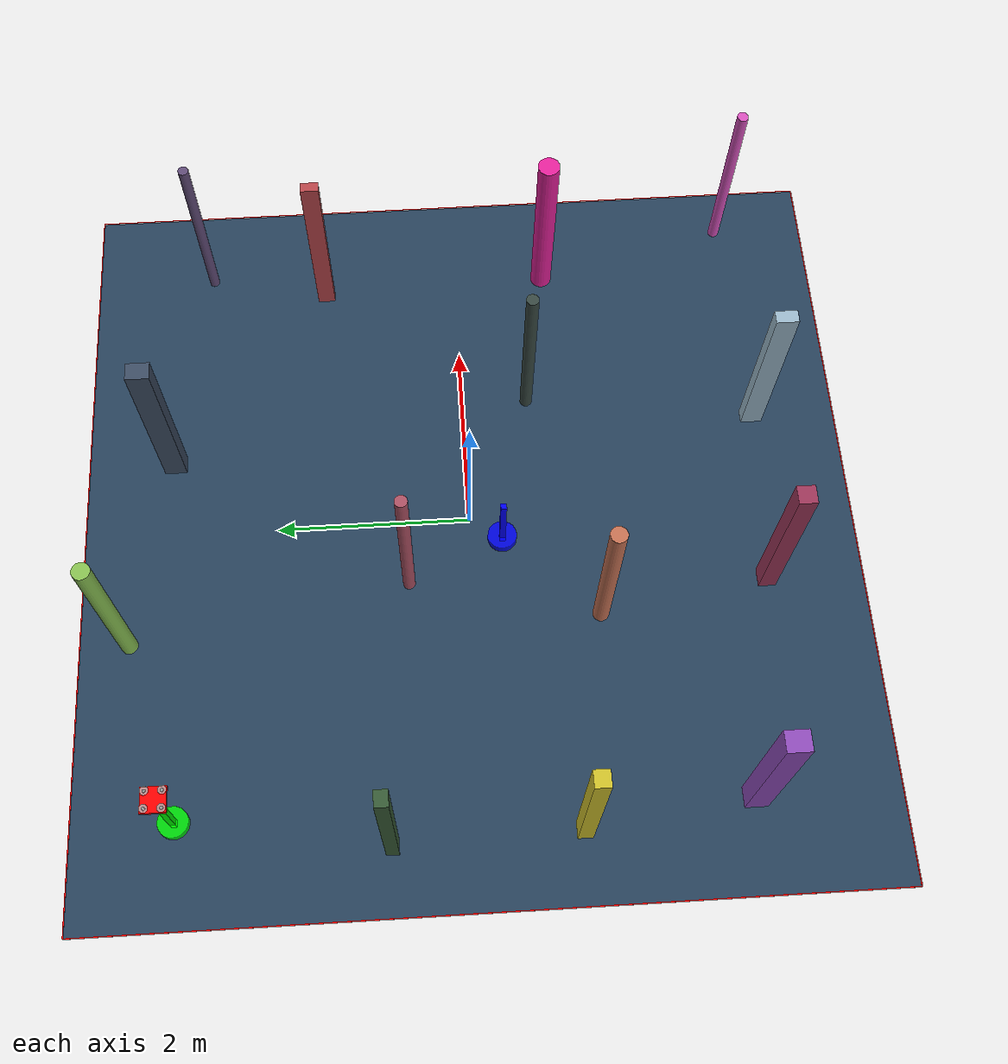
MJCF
<?xml version='1.0' encoding='utf-8'?>
<mujoco model="complex_uav_env">
  <compiler angle="degree" coordinate="local" inertiafromgeom="true" />
  <option integrator="RK4" timestep="0.01" />

  <visual>
    <headlight diffuse="0.6 0.6 0.6" ambient="0.3 0.3 0.3" />
    <rgba haze="0.15 0.25 0.35 1" />
    <global offwidth="2560" offheight="1440" />
  </visual>

  <asset>
    <texture type="skybox" builtin="gradient" rgb1="0.3 0.5 0.7" rgb2="0 0 0" width="512" height="3072" />
    <texture name="grid" type="2d" builtin="checker" rgb1="0.1 0.2 0.3" rgb2="0.2 0.3 0.4" width="512" height="512" />
    <material name="grid" texture="grid" texrepeat="1 1" />
  </asset>

  <worldbody>

    <geom name="ground" type="plane" size="4.0 4.0 0.1" material="grid" />
    <light name="light1" pos="0 0 4" dir="0 0 -1" diffuse="1 1 1" />

    <geom name="start_marker" type="cylinder" size="0.15 0.05" pos="-3.0 3.0 0.05" rgba="0 1 0 0.8" />
    <geom name="start_pole" type="box" size="0.03 0.03 0.4" pos="-3.0 3.0 0.4" rgba="0 1 0 1" />

    <geom name="goal_marker" type="cylinder" size="0.15 0.05" pos="-0.2242432156104357 -0.3198791996661612 0.05" rgba="0 0 1 0.8" />
    <geom name="goal_pole" type="box" size="0.03 0.03 0.4" pos="-0.2242432156104357 -0.3198791996661612 0.4" rgba="0 0 1 1" />

    <body name="chassis" pos="-3.0 3.0 1.0">
      <joint type="free" name="root" />
      <geom type="box" size="0.12 0.12 0.02" rgba="1.0 0.0 0.0 1.0" mass="0.8" />

      <geom type="box" size="0.08 0.01 0.005" pos="0 0 0.01" rgba="0.3 0.3 0.3 1" />
      <geom type="box" size="0.01 0.08 0.005" pos="0 0 0.01" rgba="0.3 0.3 0.3 1" />

      <geom type="cylinder" size="0.015 0.02" pos="0.08 0.08 0.015" rgba="0.2 0.2 0.2 1" />
      <geom type="cylinder" size="0.015 0.02" pos="-0.08 0.08 0.015" rgba="0.2 0.2 0.2 1" />
      <geom type="cylinder" size="0.015 0.02" pos="0.08 -0.08 0.015" rgba="0.2 0.2 0.2 1" />
      <geom type="cylinder" size="0.015 0.02" pos="-0.08 -0.08 0.015" rgba="0.2 0.2 0.2 1" />

      <geom type="cylinder" size="0.04 0.002" pos="0.08 0.08 0.035" rgba="0.7 0.7 0.7 0.8" />
      <geom type="cylinder" size="0.04 0.002" pos="-0.08 0.08 0.035" rgba="0.7 0.7 0.7 0.8" />
      <geom type="cylinder" size="0.04 0.002" pos="0.08 -0.08 0.035" rgba="0.7 0.7 0.7 0.8" />
      <geom type="cylinder" size="0.04 0.002" pos="-0.08 -0.08 0.035" rgba="0.7 0.7 0.7 0.8" />

      <site name="motor1" pos="0.08 0.08 0" size="0.01" />
      <site name="motor2" pos="-0.08 0.08 0" size="0.01" />
      <site name="motor3" pos="0.08 -0.08 0" size="0.01" />
      <site name="motor4" pos="-0.08 -0.08 0" size="0.01" />
    </body>
    <geom name="test_obs_0" type="box" size="0.0757116288975305 0.06349425384128946 1.0" pos="-3.3400115976396085 0.9319652478945712 1.0" rgba="0.21343495241598198 0.3501647741068886 0.205820254365348 1.0" />
    <geom name="test_obs_1" type="box" size="0.0653081086678565 0.11086333892384156 1.0" pos="1.0560759450921196 -3.0987988962202437 1.0" rgba="0.6024636121229404 0.7142544928659288 0.7844827196974484 1.0" />
    <geom name="test_obs_2" type="box" size="0.09865907929619491 0.11462439136318506 1.0" pos="-3.0668754951443256 -2.558372436854278 1.0" rgba="0.5519477526980986 0.2932225342218395 0.720818724333204 1.0" />
    <geom name="test_obs_3" type="cylinder" size="0.06221605528914517 1.0" pos="-0.6710129081920782 0.6642823304775587 1.0" rgba="0.6665849244584168 0.3137624197428118 0.38329012458550316 1.0" />
    <geom name="test_obs_4" type="box" size="0.0875429469306662 0.11447197404140086 1.0" pos="0.8221309156095918 3.0827096660600937 1.0" rgba="0.23336120138415373 0.2959945611643783 0.3827195871316288 1.0" />
    <geom name="test_obs_5" type="box" size="0.05198029327737542 0.09103750738142893 1.0" pos="2.8500579009937126 1.4473147940001416 1.0" rgba="0.7137692886849186 0.2701615685179249 0.2886681422735181 1.0" />
    <geom name="test_obs_6" type="cylinder" size="0.05823296463047046 1.0" pos="3.4731062011128664 -3.015288030828605 1.0" rgba="0.8402149562493672 0.31940637358274204 0.7370543896716492 1.0" />
    <geom name="test_obs_7" type="cylinder" size="0.08568443661320753 1.0" pos="-1.1806231145480752 3.497868553711653 1.0" rgba="0.5301092048429588 0.7455943674677432 0.3188719717733757 1.0" />
    <geom name="test_obs_8" type="box" size="0.08946579480181108 0.0887675338275064 1.0" pos="-0.8208569178848641 -2.9926074279078154 1.0" rgba="0.6024072223501432 0.20604899782392147 0.3435305981585597 1.0" />
    <geom name="test_obs_9" type="cylinder" size="0.08287872216414632 1.0" pos="-1.1131476356305507 -1.2628145255736853 1.0" rgba="0.7652043405739205 0.4391649361021457 0.3231172243408394 1.0" />
    <geom name="test_obs_10" type="box" size="0.0797577649873882 0.07556242035360015 1.0" pos="-3.2840481789160165 -0.8975290995256515 1.0" rgba="0.8034385417745581 0.746349865961603 0.16293193783753263 1.0" />
    <geom name="test_obs_11" type="cylinder" size="0.06386242750678879 1.0" pos="1.3890037176208767 -0.6878118856602337 1.0" rgba="0.21450236981164406 0.27876756004984615 0.2545327192840914 1.0" />
    <geom name="test_obs_12" type="cylinder" size="0.11138823529195507 1.0" pos="2.9604679028393956 -0.9759164268356137 1.0" rgba="0.8898994502412118 0.12987883625864632 0.6041430882865632 1.0" />
    <geom name="test_obs_13" type="cylinder" size="0.05320308418298462 1.0" pos="3.1250833620872434 2.710624039236288 1.0" rgba="0.37482876904075224 0.2943337764506859 0.46110402230988357 1.0" />
  <geom name="boundary_north" type="box" size="4.0 0.005 0.002" pos="0 4.0 0.002" rgba="1.0 0.0 0.0 1.0" /><geom name="boundary_south" type="box" size="4.0 0.005 0.002" pos="0 -4.0 0.002" rgba="1.0 0.0 0.0 1.0" /><geom name="boundary_east" type="box" size="0.005 4.0 0.002" pos="4.0 0 0.002" rgba="1.0 0.0 0.0 1.0" /><geom name="boundary_west" type="box" size="0.005 4.0 0.002" pos="-4.0 0 0.002" rgba="1.0 0.0 0.0 1.0" /></worldbody>

  <actuator>
    <motor name="m1" gear="0 0 1 0 0 0" site="motor1" />
    <motor name="m2" gear="0 0 1 0 0 0" site="motor2" />
    <motor name="m3" gear="0 0 1 0 0 0" site="motor3" />
    <motor name="m4" gear="0 0 1 0 0 0" site="motor4" />
  </actuator>
</mujoco>
